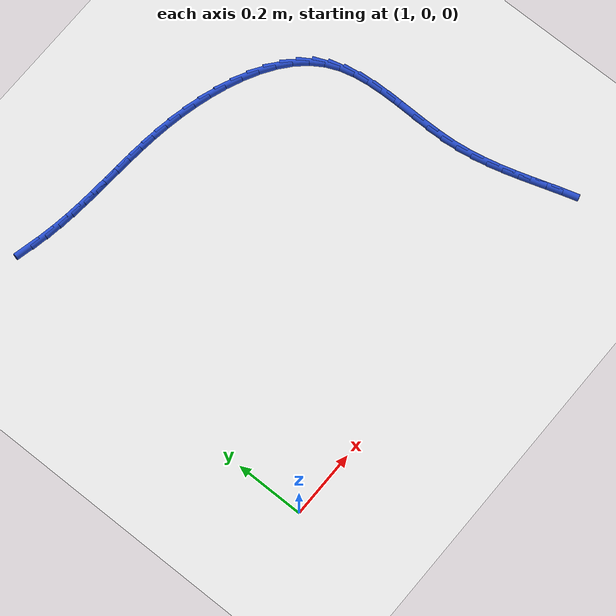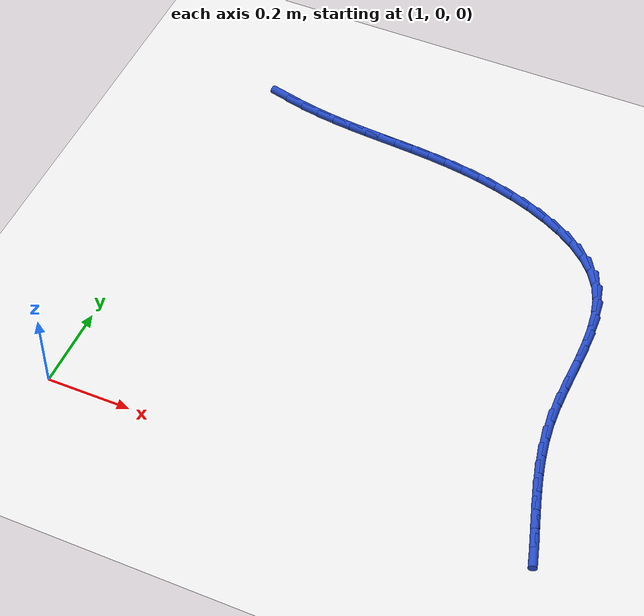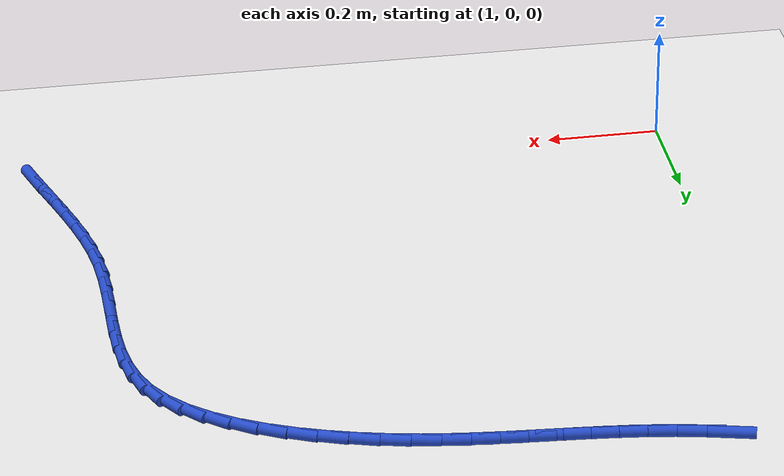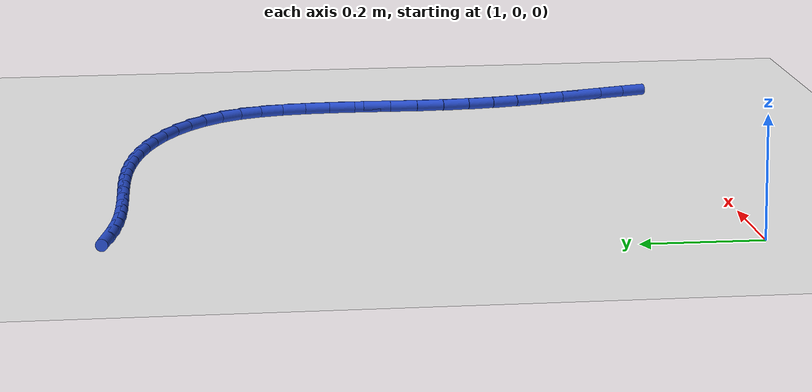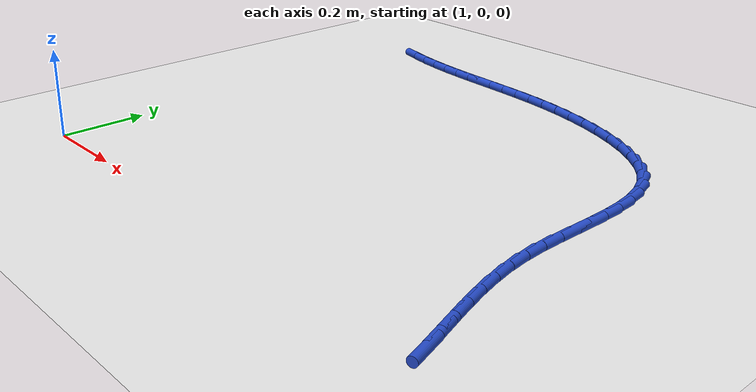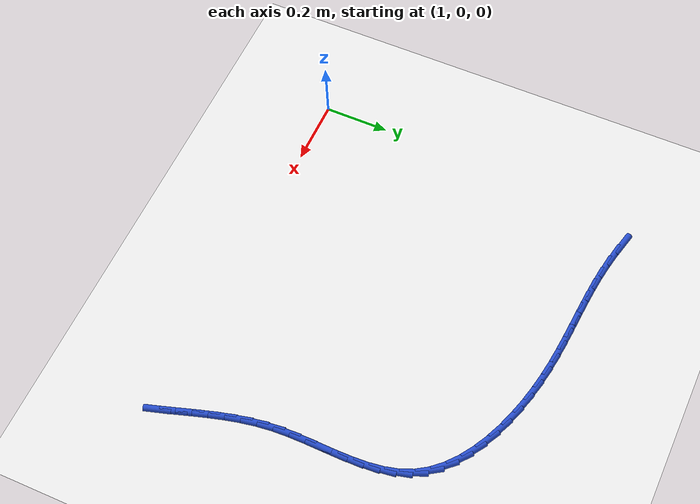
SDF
<sdf version="1.6">
 <world name="default">
  <model name="ground_plane">
   <static>1</static>
   <link name="link">
    <collision name="collision">
     <geometry><plane><normal>0 0 1</normal><size>100 100</size></plane></geometry>
     <surface><friction><ode><mu>100</mu><mu2>50</mu2></ode></friction></surface>
    </collision>
    <visual name="visual">
     <cast_shadows>0</cast_shadows>
     <geometry><plane><normal>0 0 1</normal><size>100 100</size></plane></geometry>
     <material>
      <script><uri>file://media/materials/scripts/gazebo.material</uri><name>Gazebo/WhiteGlow</name></script>
     </material>
    </visual>
   </link>
  </model>
  <model name="line">
   <link name="link_37">
    <pose>1.103831573748591 1.018057795078837 0.01 0 1.57 -0.23030615255588396</pose>
    <collision name="collision">
     <geometry><cylinder><radius>0.01</radius><length>0.08</length></cylinder></geometry>
    </collision>
    <visual name="visual">
     <material>
      <script><name>Gazebo/Blue</name><uri>file://media/materials/scripts/gazebo.material</uri></script>
     </material>
     <geometry><cylinder><radius>0.01</radius><length>0.08</length></cylinder></geometry>
    </visual>
   </link>
   <link name="link_38">
    <pose>1.1513940426710734 1.0069059979108423 0.01 0 1.57 -0.18613990437667244</pose>
    <collision name="collision">
     <geometry><cylinder><radius>0.01</radius><length>0.08</length></cylinder></geometry>
    </collision>
    <visual name="visual">
     <material>
      <script><name>Gazebo/Blue</name><uri>file://media/materials/scripts/gazebo.material</uri></script>
     </material>
     <geometry><cylinder><radius>0.01</radius><length>0.08</length></cylinder></geometry>
    </visual>
   </link>
   <link name="link_39">
    <pose>1.1982154441939137 0.9980885953943709 0.01 0 1.57 -0.1439422692745107</pose>
    <collision name="collision">
     <geometry><cylinder><radius>0.01</radius><length>0.08</length></cylinder></geometry>
    </collision>
    <visual name="visual">
     <material>
      <script><name>Gazebo/Blue</name><uri>file://media/materials/scripts/gazebo.material</uri></script>
     </material>
     <geometry><cylinder><radius>0.01</radius><length>0.08</length></cylinder></geometry>
    </visual>
   </link>
   <link name="link_40">
    <pose>1.2443769716416897 0.9913977262109258 0.01 0 1.57 -0.11001241365971014</pose>
    <collision name="collision">
     <geometry><cylinder><radius>0.01</radius><length>0.08</length></cylinder></geometry>
    </collision>
    <visual name="visual">
     <material>
      <script><name>Gazebo/Blue</name><uri>file://media/materials/scripts/gazebo.material</uri></script>
     </material>
     <geometry><cylinder><radius>0.01</radius><length>0.08</length></cylinder></geometry>
    </visual>
   </link>
   <link name="link_41">
    <pose>1.2900503022665246 0.986352723658589 0.01 0 1.57 -0.08533186122812078</pose>
    <collision name="collision">
     <geometry><cylinder><radius>0.01</radius><length>0.08</length></cylinder></geometry>
    </collision>
    <visual name="visual">
     <material>
      <script><name>Gazebo/Blue</name><uri>file://media/materials/scripts/gazebo.material</uri></script>
     </material>
     <geometry><cylinder><radius>0.01</radius><length>0.08</length></cylinder></geometry>
    </visual>
   </link>
   <link name="link_42">
    <pose>1.3354071133273442 0.9824729210149266 0.01 0 1.57 -0.07055577632179359</pose>
    <collision name="collision">
     <geometry><cylinder><radius>0.01</radius><length>0.08</length></cylinder></geometry>
    </collision>
    <visual name="visual">
     <material>
      <script><name>Gazebo/Blue</name><uri>file://media/materials/scripts/gazebo.material</uri></script>
     </material>
     <geometry><cylinder><radius>0.01</radius><length>0.08</length></cylinder></geometry>
    </visual>
   </link>
   <link name="link_43">
    <pose>1.380619082083077 0.9792776515575038 0.01 0 1.57 -0.06602859057947813</pose>
    <collision name="collision">
     <geometry><cylinder><radius>0.01</radius><length>0.08</length></cylinder></geometry>
    </collision>
    <visual name="visual">
     <material>
      <script><name>Gazebo/Blue</name><uri>file://media/materials/scripts/gazebo.material</uri></script>
     </material>
     <geometry><cylinder><radius>0.01</radius><length>0.08</length></cylinder></geometry>
    </visual>
   </link>
   <link name="link_44">
    <pose>1.4258578857926496 0.9762862485638863 0.01 0 1.57 -0.07180407760694231</pose>
    <collision name="collision">
     <geometry><cylinder><radius>0.01</radius><length>0.08</length></cylinder></geometry>
    </collision>
    <visual name="visual">
     <material>
      <script><name>Gazebo/Blue</name><uri>file://media/materials/scripts/gazebo.material</uri></script>
     </material>
     <geometry><cylinder><radius>0.01</radius><length>0.08</length></cylinder></geometry>
    </visual>
   </link>
   <link name="link_45">
    <pose>1.4712952017149905 0.9730180453116405 0.01 0 1.57 -0.08765712379779685</pose>
    <collision name="collision">
     <geometry><cylinder><radius>0.01</radius><length>0.08</length></cylinder></geometry>
    </collision>
    <visual name="visual">
     <material>
      <script><name>Gazebo/Blue</name><uri>file://media/materials/scripts/gazebo.material</uri></script>
     </material>
     <geometry><cylinder><radius>0.01</radius><length>0.08</length></cylinder></geometry>
    </visual>
   </link>
   <link name="link_46">
    <pose>1.5171027071090248 0.9689923750783316 0.01 0 1.57 -0.11308345581966468</pose>
    <collision name="collision">
     <geometry><cylinder><radius>0.01</radius><length>0.08</length></cylinder></geometry>
    </collision>
    <visual name="visual">
     <material>
      <script><name>Gazebo/Blue</name><uri>file://media/materials/scripts/gazebo.material</uri></script>
     </material>
     <geometry><cylinder><radius>0.01</radius><length>0.08</length></cylinder></geometry>
    </visual>
   </link>
   <link name="link_47">
    <pose>1.5634520792336812 0.9637285711415254 0.01 0 1.57 -0.14729293037486305</pose>
    <collision name="collision">
     <geometry><cylinder><radius>0.01</radius><length>0.08</length></cylinder></geometry>
    </collision>
    <visual name="visual">
     <material>
      <script><name>Gazebo/Blue</name><uri>file://media/materials/scripts/gazebo.material</uri></script>
     </material>
     <geometry><cylinder><radius>0.01</radius><length>0.08</length></cylinder></geometry>
    </visual>
   </link>
   <link name="link_48">
    <pose>1.6105149953478866 0.9567459667787876 0.01 0 1.57 -0.18918848437810185</pose>
    <collision name="collision">
     <geometry><cylinder><radius>0.01</radius><length>0.08</length></cylinder></geometry>
    </collision>
    <visual name="visual">
     <material>
      <script><name>Gazebo/Blue</name><uri>file://media/materials/scripts/gazebo.material</uri></script>
     </material>
     <geometry><cylinder><radius>0.01</radius><length>0.08</length></cylinder></geometry>
    </visual>
   </link>
   <link name="link_49">
    <pose>1.658457001704698 0.9475661063060195 0.01 0 1.57 -0.2365714419183578</pose>
    <collision name="collision">
     <geometry><cylinder><radius>0.01</radius><length>0.08</length></cylinder></geometry>
    </collision>
    <visual name="visual">
     <material>
      <script><name>Gazebo/Blue</name><uri>file://media/materials/scripts/gazebo.material</uri></script>
     </material>
     <geometry><cylinder><radius>0.01</radius><length>0.08</length></cylinder></geometry>
    </visual>
   </link>
   <link name="link_50">
    <pose>1.7070623224504706 0.9358480510818011 0.01 0 1.57 -0.2885197519070699</pose>
    <collision name="collision">
     <geometry><cylinder><radius>0.01</radius><length>0.08</length></cylinder></geometry>
    </collision>
    <visual name="visual">
     <material>
      <script><name>Gazebo/Blue</name><uri>file://media/materials/scripts/gazebo.material</uri></script>
     </material>
     <geometry><cylinder><radius>0.01</radius><length>0.08</length></cylinder></geometry>
    </visual>
   </link>
   <link name="link_51">
    <pose>1.755516259196805 0.9214668532355754 0.01 0 1.57 -0.3469289847563097</pose>
    <collision name="collision">
     <geometry><cylinder><radius>0.01</radius><length>0.08</length></cylinder></geometry>
    </collision>
    <visual name="visual">
     <material>
      <script><name>Gazebo/Blue</name><uri>file://media/materials/scripts/gazebo.material</uri></script>
     </material>
     <geometry><cylinder><radius>0.01</radius><length>0.08</length></cylinder></geometry>
    </visual>
   </link>
   <link name="link_52">
    <pose>1.802951662016576 0.9043164806123 0.01 0 1.57 -0.41420708618827373</pose>
    <collision name="collision">
     <geometry><cylinder><radius>0.01</radius><length>0.08</length></cylinder></geometry>
    </collision>
    <visual name="visual">
     <material>
      <script><name>Gazebo/Blue</name><uri>file://media/materials/scripts/gazebo.material</uri></script>
     </material>
     <geometry><cylinder><radius>0.01</radius><length>0.08</length></cylinder></geometry>
    </visual>
   </link>
   <link name="link_53">
    <pose>1.8485013809826565 0.8842909010569322 0.01 0 1.57 -0.4932589756532916</pose>
    <collision name="collision">
     <geometry><cylinder><radius>0.01</radius><length>0.08</length></cylinder></geometry>
    </collision>
    <visual name="visual">
     <material>
      <script><name>Gazebo/Blue</name><uri>file://media/materials/scripts/gazebo.material</uri></script>
     </material>
     <geometry><cylinder><radius>0.01</radius><length>0.08</length></cylinder></geometry>
    </visual>
   </link>
   <link name="link_54">
    <pose>1.8912982661679218 0.8612840824144296 0.01 0 1.57 -0.5875811224807701</pose>
    <collision name="collision">
     <geometry><cylinder><radius>0.01</radius><length>0.08</length></cylinder></geometry>
    </collision>
    <visual name="visual">
     <material>
      <script><name>Gazebo/Blue</name><uri>file://media/materials/scripts/gazebo.material</uri></script>
     </material>
     <geometry><cylinder><radius>0.01</radius><length>0.08</length></cylinder></geometry>
    </visual>
   </link>
   <link name="link_55">
    <pose>1.9304751676452439 0.8351899925297498 0.01 0 1.57 -0.7011557776033039</pose>
    <collision name="collision">
     <geometry><cylinder><radius>0.01</radius><length>0.08</length></cylinder></geometry>
    </collision>
    <visual name="visual">
     <material>
      <script><name>Gazebo/Blue</name><uri>file://media/materials/scripts/gazebo.material</uri></script>
     </material>
     <geometry><cylinder><radius>0.01</radius><length>0.08</length></cylinder></geometry>
    </visual>
   </link>
   <link name="link_56">
    <pose>1.9651649354874985 0.8059025992478506 0.01 0 1.57 -0.8378552969285713</pose>
    <collision name="collision">
     <geometry><cylinder><radius>0.01</radius><length>0.08</length></cylinder></geometry>
    </collision>
    <visual name="visual">
     <material>
      <script><name>Gazebo/Blue</name><uri>file://media/materials/scripts/gazebo.material</uri></script>
     </material>
     <geometry><cylinder><radius>0.01</radius><length>0.08</length></cylinder></geometry>
    </visual>
   </link>
   <link name="link_57">
    <pose>1.994500419767558 0.7733158704136892 0.01 0 1.57 -0.9999236391090426</pose>
    <collision name="collision">
     <geometry><cylinder><radius>0.01</radius><length>0.08</length></cylinder></geometry>
    </collision>
    <visual name="visual">
     <material>
      <script><name>Gazebo/Blue</name><uri>file://media/materials/scripts/gazebo.material</uri></script>
     </material>
     <geometry><cylinder><radius>0.01</radius><length>0.08</length></cylinder></geometry>
    </visual>
   </link>
   <link name="link_58">
    <pose>2.0176145457716563 0.7373237974003014 0.01 0 1.57 -1.1755204792320735</pose>
    <collision name="collision">
     <geometry><cylinder><radius>0.01</radius><length>0.08</length></cylinder></geometry>
    </collision>
    <visual name="visual">
     <material>
      <script><name>Gazebo/Blue</name><uri>file://media/materials/scripts/gazebo.material</uri></script>
     </material>
     <geometry><cylinder><radius>0.01</radius><length>0.08</length></cylinder></geometry>
    </visual>
   </link>
   <link name="link_59">
    <pose>2.0340440755863485 0.6979466989244446 0.01 0 1.57 -1.3247147613998327</pose>
    <collision name="collision">
     <geometry><cylinder><radius>0.01</radius><length>0.08</length></cylinder></geometry>
    </collision>
    <visual name="visual">
     <material>
      <script><name>Gazebo/Blue</name><uri>file://media/materials/scripts/gazebo.material</uri></script>
     </material>
     <geometry><cylinder><radius>0.01</radius><length>0.08</length></cylinder></geometry>
    </visual>
   </link>
   <link name="link_60">
    <pose>2.0446737173733105 0.6556265552429148 0.01 0 1.57 -1.437565747576375</pose>
    <collision name="collision">
     <geometry><cylinder><radius>0.01</radius><length>0.08</length></cylinder></geometry>
    </collision>
    <visual name="visual">
     <material>
      <script><name>Gazebo/Blue</name><uri>file://media/materials/scripts/gazebo.material</uri></script>
     </material>
     <geometry><cylinder><radius>0.01</radius><length>0.08</length></cylinder></geometry>
    </visual>
   </link>
   <link name="link_61">
    <pose>2.0506690812311787 0.6108932177414257 0.01 0 1.57 -1.516647767356623</pose>
    <collision name="collision">
     <geometry><cylinder><radius>0.01</radius><length>0.08</length></cylinder></geometry>
    </collision>
    <visual name="visual">
     <material>
      <script><name>Gazebo/Blue</name><uri>file://media/materials/scripts/gazebo.material</uri></script>
     </material>
     <geometry><cylinder><radius>0.01</radius><length>0.08</length></cylinder></geometry>
    </visual>
   </link>
   <link name="link_62">
    <pose>2.053195777258591 0.5642765378056899 0.01 0 1.57 -1.5661343322511034</pose>
    <collision name="collision">
     <geometry><cylinder><radius>0.01</radius><length>0.08</length></cylinder></geometry>
    </collision>
    <visual name="visual">
     <material>
      <script><name>Gazebo/Blue</name><uri>file://media/materials/scripts/gazebo.material</uri></script>
     </material>
     <geometry><cylinder><radius>0.01</radius><length>0.08</length></cylinder></geometry>
    </visual>
   </link>
   <link name="link_63">
    <pose>2.053419415554186 0.5163063668214218 0.01 0 1.57 1.5520705393982241</pose>
    <collision name="collision">
     <geometry><cylinder><radius>0.01</radius><length>0.08</length></cylinder></geometry>
    </collision>
    <visual name="visual">
     <material>
      <script><name>Gazebo/Blue</name><uri>file://media/materials/scripts/gazebo.material</uri></script>
     </material>
     <geometry><cylinder><radius>0.01</radius><length>0.08</length></cylinder></geometry>
    </visual>
   </link>
   <link name="link_64">
    <pose>2.052505606216599 0.4675125561743343 0.01 0 1.57 1.5527561127341483</pose>
    <collision name="collision">
     <geometry><cylinder><radius>0.01</radius><length>0.08</length></cylinder></geometry>
    </collision>
    <visual name="visual">
     <material>
      <script><name>Gazebo/Blue</name><uri>file://media/materials/scripts/gazebo.material</uri></script>
     </material>
     <geometry><cylinder><radius>0.01</radius><length>0.08</length></cylinder></geometry>
    </visual>
   </link>
   <link name="link_65">
    <pose>2.051619959344469 0.4184249572501405 0.01 0 1.57 -1.564489020364419</pose>
    <collision name="collision">
     <geometry><cylinder><radius>0.01</radius><length>0.08</length></cylinder></geometry>
    </collision>
    <visual name="visual">
     <material>
      <script><name>Gazebo/Blue</name><uri>file://media/materials/scripts/gazebo.material</uri></script>
     </material>
     <geometry><cylinder><radius>0.01</radius><length>0.08</length></cylinder></geometry>
    </visual>
   </link>
   <link name="link_66">
    <pose>2.051928085036432 0.3695734214345538 0.01 0 1.57 -1.5153809063706811</pose>
    <collision name="collision">
     <geometry><cylinder><radius>0.01</radius><length>0.08</length></cylinder></geometry>
    </collision>
    <visual name="visual">
     <material>
      <script><name>Gazebo/Blue</name><uri>file://media/materials/scripts/gazebo.material</uri></script>
     </material>
     <geometry><cylinder><radius>0.01</radius><length>0.08</length></cylinder></geometry>
    </visual>
   </link>
   <link name="link_67">
    <pose>2.0545955030594105 0.3214877620070763 0.01 0 1.57 -1.4470990301535427</pose>
    <collision name="collision">
     <geometry><cylinder><radius>0.01</radius><length>0.08</length></cylinder></geometry>
    </collision>
    <visual name="visual">
     <material>
      <script><name>Gazebo/Blue</name><uri>file://media/materials/scripts/gazebo.material</uri></script>
     </material>
     <geometry><cylinder><radius>0.01</radius><length>0.08</length></cylinder></geometry>
    </visual>
   </link>
   <link name="link_68">
    <pose>2.0604316724348934 0.27454758890243075 0.01 0 1.57 -1.3845447869739942</pose>
    <collision name="collision">
     <geometry><cylinder><radius>0.01</radius><length>0.08</length></cylinder></geometry>
    </collision>
    <visual name="visual">
     <material>
      <script><name>Gazebo/Blue</name><uri>file://media/materials/scripts/gazebo.material</uri></script>
     </material>
     <geometry><cylinder><radius>0.01</radius><length>0.08</length></cylinder></geometry>
    </visual>
   </link>
   <link name="link_69">
    <pose>2.069082016290396 0.22864146639259056 0.01 0 1.57 -1.334153475552588</pose>
    <collision name="collision">
     <geometry><cylinder><radius>0.01</radius><length>0.08</length></cylinder></geometry>
    </collision>
    <visual name="visual">
     <material>
      <script><name>Gazebo/Blue</name><uri>file://media/materials/scripts/gazebo.material</uri></script>
     </material>
     <geometry><cylinder><radius>0.01</radius><length>0.08</length></cylinder></geometry>
    </visual>
   </link>
   <link name="link_70">
    <pose>2.079954463682541 0.18355777246314128 0.01 0 1.57 -1.2967438928959178</pose>
    <collision name="collision">
     <geometry><cylinder><radius>0.01</radius><length>0.08</length></cylinder></geometry>
    </collision>
    <visual name="visual">
     <material>
      <script><name>Gazebo/Blue</name><uri>file://media/materials/scripts/gazebo.material</uri></script>
     </material>
     <geometry><cylinder><radius>0.01</radius><length>0.08</length></cylinder></geometry>
    </visual>
   </link>
   <link name="link_71">
    <pose>2.092456943667953 0.13908488509966796 0.01 0 1.57 -1.2727264518706305</pose>
    <collision name="collision">
     <geometry><cylinder><radius>0.01</radius><length>0.08</length></cylinder></geometry>
    </collision>
    <visual name="visual">
     <material>
      <script><name>Gazebo/Blue</name><uri>file://media/materials/scripts/gazebo.material</uri></script>
     </material>
     <geometry><cylinder><radius>0.01</radius><length>0.08</length></cylinder></geometry>
    </visual>
   </link>
   <link name="link_72">
    <pose>2.1059973853032523 0.09501118228775697 0.01 0 1.57 -1.2622768071640826</pose>
    <collision name="collision">
     <geometry><cylinder><radius>0.01</radius><length>0.08</length></cylinder></geometry>
    </collision>
    <visual name="visual">
     <material>
      <script><name>Gazebo/Blue</name><uri>file://media/materials/scripts/gazebo.material</uri></script>
     </material>
     <geometry><cylinder><radius>0.01</radius><length>0.08</length></cylinder></geometry>
    </visual>
   </link>
   <link name="link_73">
    <pose>2.1199837176450647 0.05112504201299341 0.01 0 1.57 -1.2654606687503125</pose>
    <collision name="collision">
     <geometry><cylinder><radius>0.01</radius><length>0.08</length></cylinder></geometry>
    </collision>
    <visual name="visual">
     <material>
      <script><name>Gazebo/Blue</name><uri>file://media/materials/scripts/gazebo.material</uri></script>
     </material>
     <geometry><cylinder><radius>0.01</radius><length>0.08</length></cylinder></geometry>
    </visual>
   </link>
   <link name="link_74">
    <pose>2.1338238697500116 0.0072148422609626985 0.01 0 1.57 -1.282290312422035</pose>
    <collision name="collision">
     <geometry><cylinder><radius>0.01</radius><length>0.08</length></cylinder></geometry>
    </collision>
    <visual name="visual">
     <material>
      <script><name>Gazebo/Blue</name><uri>file://media/materials/scripts/gazebo.material</uri></script>
     </material>
     <geometry><cylinder><radius>0.01</radius><length>0.08</length></cylinder></geometry>
    </visual>
   </link>
  </model>
 </world>
</sdf>
